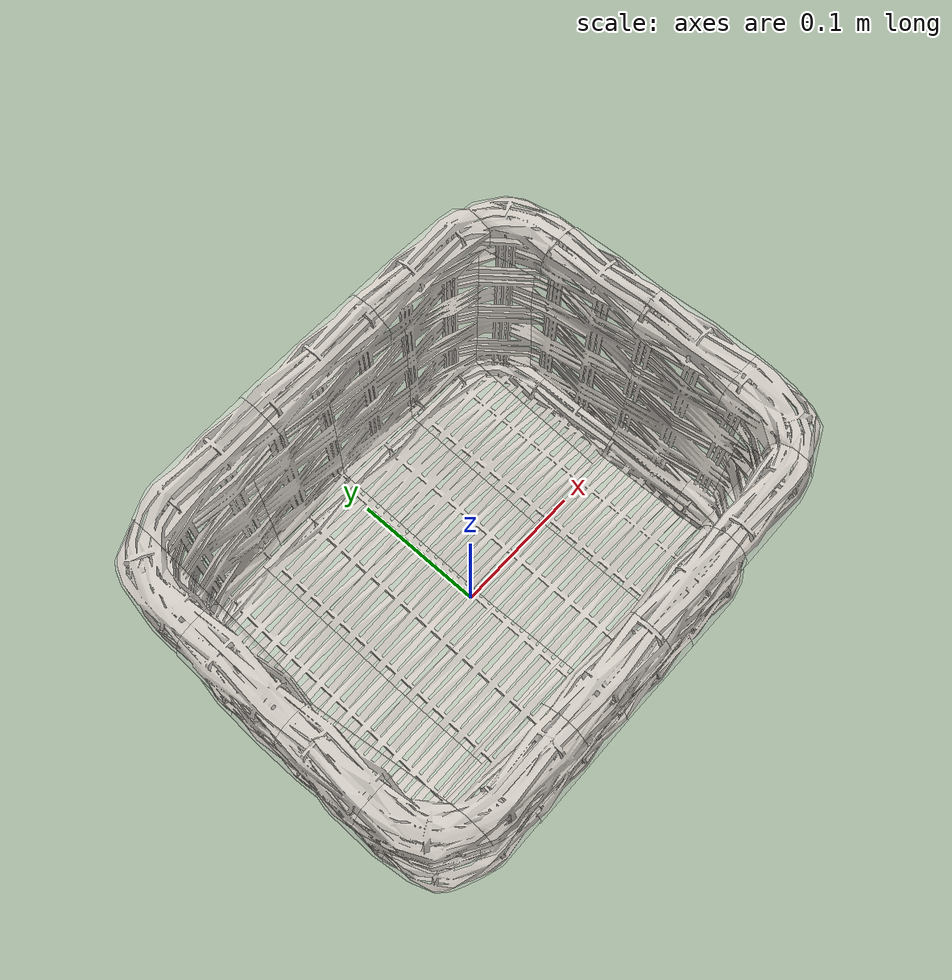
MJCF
<mujoco model="model">
  <compiler angle="radian"/>
  <asset>
    <mesh file="visual/Basket034.obj" name="Basket034_vis"/>
    <texture file="visual/MI_Basket034_BC001.png" name="Basket034_material" type="2d"/>
    <material name="Basket034_material" rgba="1 1 1 1.0" texture="Basket034_material" shininess="0.4472135901451111" specular="0.3103448502657381"/>
    <mesh file="collision/Basket034_collision_9_0.obj" name="Basket034_collision_9_0"/>
    <mesh file="collision/Basket034_collision_9_1.obj" name="Basket034_collision_9_1"/>
    <mesh file="collision/Basket034_collision_18_0.obj" name="Basket034_collision_18_0"/>
    <mesh file="collision/Basket034_collision_24_0.obj" name="Basket034_collision_24_0"/>
    <mesh file="collision/Basket034_collision_24_1.obj" name="Basket034_collision_24_1"/>
    <mesh file="collision/Basket034_collision_19_0.obj" name="Basket034_collision_19_0"/>
    <mesh file="collision/Basket034_collision_8_0.obj" name="Basket034_collision_8_0"/>
    <mesh file="collision/Basket034_collision_8_1.obj" name="Basket034_collision_8_1"/>
    <mesh file="collision/Basket034_collision_21_0.obj" name="Basket034_collision_21_0"/>
    <mesh file="collision/Basket034_collision_20_0.obj" name="Basket034_collision_20_0"/>
    <mesh file="collision/Basket034_collision_22_0.obj" name="Basket034_collision_22_0"/>
    <mesh file="collision/Basket034_collision_23_0.obj" name="Basket034_collision_23_0"/>
    <mesh file="collision/Basket034_collision_3_0.obj" name="Basket034_collision_3_0"/>
    <mesh file="collision/Basket034_collision_3_1.obj" name="Basket034_collision_3_1"/>
    <mesh file="collision/Basket034_collision_12_0.obj" name="Basket034_collision_12_0"/>
    <mesh file="collision/Basket034_collision_12_1.obj" name="Basket034_collision_12_1"/>
    <mesh file="collision/Basket034_collision_13_0.obj" name="Basket034_collision_13_0"/>
    <mesh file="collision/Basket034_collision_13_1.obj" name="Basket034_collision_13_1"/>
    <mesh file="collision/Basket034_collision_2_0.obj" name="Basket034_collision_2_0"/>
    <mesh file="collision/Basket034_collision_2_1.obj" name="Basket034_collision_2_1"/>
    <mesh file="collision/Basket034_collision_2_2.obj" name="Basket034_collision_2_2"/>
    <mesh file="collision/Basket034_collision_2_3.obj" name="Basket034_collision_2_3"/>
    <mesh file="collision/Basket034_collision_0_0.obj" name="Basket034_collision_0_0"/>
    <mesh file="collision/Basket034_collision_0_1.obj" name="Basket034_collision_0_1"/>
    <mesh file="collision/Basket034_collision_0_2.obj" name="Basket034_collision_0_2"/>
    <mesh file="collision/Basket034_collision_0_3.obj" name="Basket034_collision_0_3"/>
    <mesh file="collision/Basket034_collision_11_0.obj" name="Basket034_collision_11_0"/>
    <mesh file="collision/Basket034_collision_11_1.obj" name="Basket034_collision_11_1"/>
    <mesh file="collision/Basket034_collision_10_0.obj" name="Basket034_collision_10_0"/>
    <mesh file="collision/Basket034_collision_10_1.obj" name="Basket034_collision_10_1"/>
    <mesh file="collision/Basket034_collision_1_0.obj" name="Basket034_collision_1_0"/>
    <mesh file="collision/Basket034_collision_1_1.obj" name="Basket034_collision_1_1"/>
    <mesh file="collision/Basket034_collision_1_2.obj" name="Basket034_collision_1_2"/>
    <mesh file="collision/Basket034_collision_1_3.obj" name="Basket034_collision_1_3"/>
    <mesh file="collision/Basket034_collision_5_0.obj" name="Basket034_collision_5_0"/>
    <mesh file="collision/Basket034_collision_5_1.obj" name="Basket034_collision_5_1"/>
    <mesh file="collision/Basket034_collision_14_0.obj" name="Basket034_collision_14_0"/>
    <mesh file="collision/Basket034_collision_14_1.obj" name="Basket034_collision_14_1"/>
    <mesh file="collision/Basket034_collision_15_0.obj" name="Basket034_collision_15_0"/>
    <mesh file="collision/Basket034_collision_15_1.obj" name="Basket034_collision_15_1"/>
    <mesh file="collision/Basket034_collision_4_0.obj" name="Basket034_collision_4_0"/>
    <mesh file="collision/Basket034_collision_4_1.obj" name="Basket034_collision_4_1"/>
    <mesh file="collision/Basket034_collision_6_0.obj" name="Basket034_collision_6_0"/>
    <mesh file="collision/Basket034_collision_6_1.obj" name="Basket034_collision_6_1"/>
    <mesh file="collision/Basket034_collision_17_0.obj" name="Basket034_collision_17_0"/>
    <mesh file="collision/Basket034_collision_17_1.obj" name="Basket034_collision_17_1"/>
    <mesh file="collision/Basket034_collision_16_0.obj" name="Basket034_collision_16_0"/>
    <mesh file="collision/Basket034_collision_16_1.obj" name="Basket034_collision_16_1"/>
    <mesh file="collision/Basket034_collision_7_0.obj" name="Basket034_collision_7_0"/>
    <mesh file="collision/Basket034_collision_7_1.obj" name="Basket034_collision_7_1"/>
    <mesh file="collision/Basket034_collision_7_2.obj" name="Basket034_collision_7_2"/>
  </asset>
  <default>
    <default class="visual">
      <geom conaffinity="0" contype="0" group="1" type="mesh" density="100"/>
    </default>
    <default class="collision">
      <geom group="0" rgba="1 1 1 0.25" density="100" solimp="0.95 0.98 0.001" solref="0.004 1"/>
    </default>
    <default class="region">
      <geom group="1" conaffinity="0" contype="0" rgba="0 1 0 0"/>
    </default>
  </default>
  <worldbody>
    <body>
      <body name="object">
        <geom mesh="Basket034_vis" type="mesh" class="visual" material="Basket034_material"/>
        <geom class="collision" type="mesh" mesh="Basket034_collision_9_0"/>
        <geom class="collision" type="mesh" mesh="Basket034_collision_9_1"/>
        <geom class="collision" type="mesh" mesh="Basket034_collision_18_0"/>
        <geom class="collision" type="mesh" mesh="Basket034_collision_24_0"/>
        <geom class="collision" type="mesh" mesh="Basket034_collision_24_1"/>
        <geom class="collision" type="mesh" mesh="Basket034_collision_19_0"/>
        <geom class="collision" type="mesh" mesh="Basket034_collision_8_0"/>
        <geom class="collision" type="mesh" mesh="Basket034_collision_8_1"/>
        <geom class="collision" type="mesh" mesh="Basket034_collision_21_0"/>
        <geom class="collision" type="mesh" mesh="Basket034_collision_20_0"/>
        <geom class="collision" type="mesh" mesh="Basket034_collision_22_0"/>
        <geom class="collision" type="mesh" mesh="Basket034_collision_23_0"/>
        <geom class="collision" type="mesh" mesh="Basket034_collision_3_0"/>
        <geom class="collision" type="mesh" mesh="Basket034_collision_3_1"/>
        <geom class="collision" type="mesh" mesh="Basket034_collision_12_0"/>
        <geom class="collision" type="mesh" mesh="Basket034_collision_12_1"/>
        <geom class="collision" type="mesh" mesh="Basket034_collision_13_0"/>
        <geom class="collision" type="mesh" mesh="Basket034_collision_13_1"/>
        <geom class="collision" type="mesh" mesh="Basket034_collision_2_0"/>
        <geom class="collision" type="mesh" mesh="Basket034_collision_2_1"/>
        <geom class="collision" type="mesh" mesh="Basket034_collision_2_2"/>
        <geom class="collision" type="mesh" mesh="Basket034_collision_2_3"/>
        <geom class="collision" type="mesh" mesh="Basket034_collision_0_0"/>
        <geom class="collision" type="mesh" mesh="Basket034_collision_0_1"/>
        <geom class="collision" type="mesh" mesh="Basket034_collision_0_2"/>
        <geom class="collision" type="mesh" mesh="Basket034_collision_0_3"/>
        <geom class="collision" type="mesh" mesh="Basket034_collision_11_0"/>
        <geom class="collision" type="mesh" mesh="Basket034_collision_11_1"/>
        <geom class="collision" type="mesh" mesh="Basket034_collision_10_0"/>
        <geom class="collision" type="mesh" mesh="Basket034_collision_10_1"/>
        <geom class="collision" type="mesh" mesh="Basket034_collision_1_0"/>
        <geom class="collision" type="mesh" mesh="Basket034_collision_1_1"/>
        <geom class="collision" type="mesh" mesh="Basket034_collision_1_2"/>
        <geom class="collision" type="mesh" mesh="Basket034_collision_1_3"/>
        <geom class="collision" type="mesh" mesh="Basket034_collision_5_0"/>
        <geom class="collision" type="mesh" mesh="Basket034_collision_5_1"/>
        <geom class="collision" type="mesh" mesh="Basket034_collision_14_0"/>
        <geom class="collision" type="mesh" mesh="Basket034_collision_14_1"/>
        <geom class="collision" type="mesh" mesh="Basket034_collision_15_0"/>
        <geom class="collision" type="mesh" mesh="Basket034_collision_15_1"/>
        <geom class="collision" type="mesh" mesh="Basket034_collision_4_0"/>
        <geom class="collision" type="mesh" mesh="Basket034_collision_4_1"/>
        <geom class="collision" type="mesh" mesh="Basket034_collision_6_0"/>
        <geom class="collision" type="mesh" mesh="Basket034_collision_6_1"/>
        <geom class="collision" type="mesh" mesh="Basket034_collision_17_0"/>
        <geom class="collision" type="mesh" mesh="Basket034_collision_17_1"/>
        <geom class="collision" type="mesh" mesh="Basket034_collision_16_0"/>
        <geom class="collision" type="mesh" mesh="Basket034_collision_16_1"/>
        <geom class="collision" type="mesh" mesh="Basket034_collision_7_0"/>
        <geom class="collision" type="mesh" mesh="Basket034_collision_7_1"/>
        <geom class="collision" type="mesh" mesh="Basket034_collision_7_2"/>
        <geom class="region" name="reg_bbox" type="box" pos="0.00020950000000000135 -2.2000000000008124e-05 0.09543852" size="0.1714665 0.13764300000000002 0.09918547999999999"/>
      </body>
    </body>
  </worldbody>
</mujoco>
